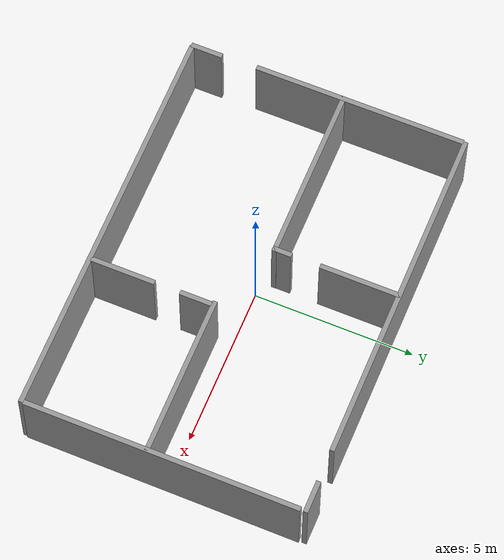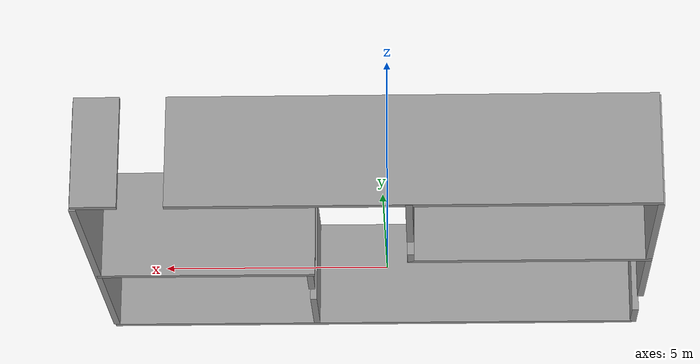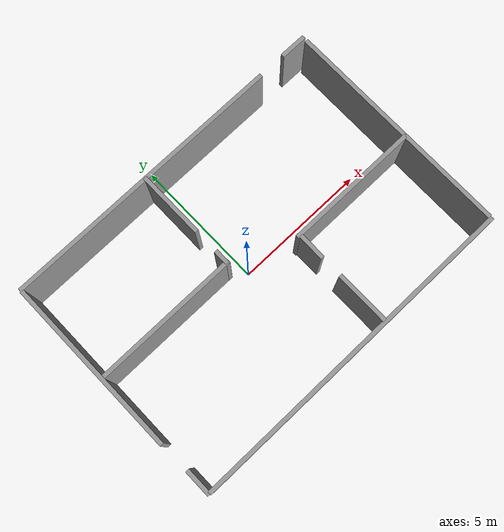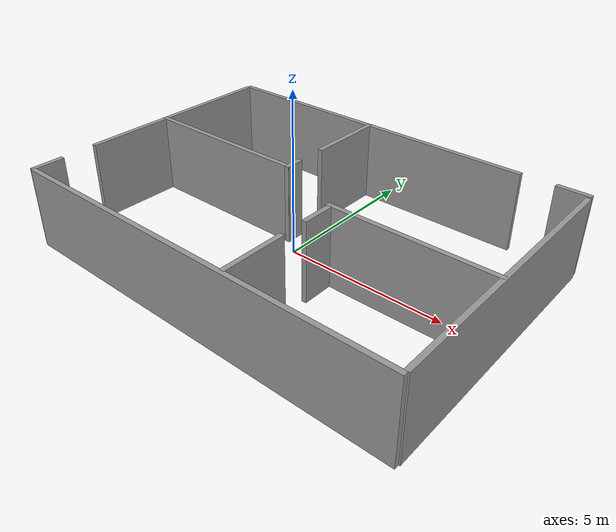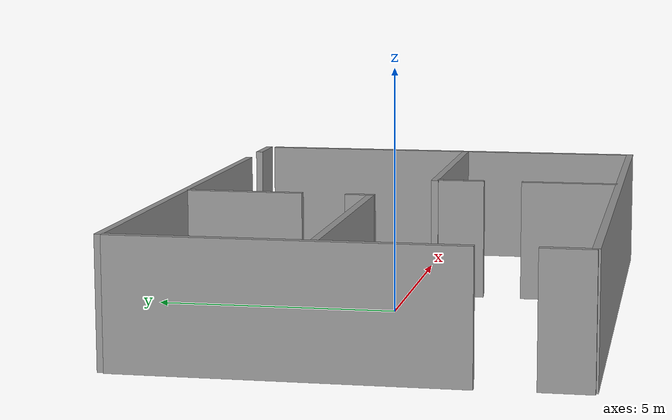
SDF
<?xml version='1.0'?>
<sdf version='1.6'>
  <model name='hw1'>
    <pose frame=''>0.376981 -0.092996 0 0 -0 0</pose>
    <link name='Wall_10'>
      <collision name='Wall_10_Collision'>
        <geometry>
          <box>
            <size>1 0.15 2.5</size>
          </box>
        </geometry>
        <pose frame=''>0 0 1.25 0 -0 0</pose>
      </collision>
      <visual name='Wall_10_Visual'>
        <pose frame=''>0 0 1.25 0 -0 0</pose>
        <geometry>
          <box>
            <size>1 0.15 2.5</size>
          </box>
        </geometry>
        <material>
          <script>
            <uri>file://media/materials/scripts/gazebo.material</uri>
            <name>Gazebo/Grey</name>
          </script>
          <ambient>1 1 1 1</ambient>
        </material>
        <meta>
          <layer>0</layer>
        </meta>
      </visual>
      <pose frame=''>5.80062 4.35984 0 0 -0 3.14159</pose>
    </link>
    <link name='Wall_12'>
      <collision name='Wall_12_Collision'>
        <geometry>
          <box>
            <size>10.6 0.15 2.5</size>
          </box>
        </geometry>
        <pose frame=''>0 0 1.25 0 -0 0</pose>
      </collision>
      <visual name='Wall_12_Visual'>
        <pose frame=''>0 0 1.25 0 -0 0</pose>
        <geometry>
          <box>
            <size>10.6 0.15 2.5</size>
          </box>
        </geometry>
        <material>
          <script>
            <uri>file://media/materials/scripts/gazebo.material</uri>
            <name>Gazebo/Grey</name>
          </script>
          <ambient>1 1 1 1</ambient>
        </material>
        <meta>
          <layer>0</layer>
        </meta>
      </visual>
      <pose frame=''>-0.997757 4.35501 0 0 -0 0</pose>
    </link>
    <link name='Wall_14'>
      <collision name='Wall_14_Collision'>
        <geometry>
          <box>
            <size>6.6 0.15 2.5</size>
          </box>
        </geometry>
        <pose frame=''>0 0 1.25 0 -0 0</pose>
      </collision>
      <visual name='Wall_14_Visual'>
        <pose frame=''>0 0 1.25 0 -0 0</pose>
        <geometry>
          <box>
            <size>6.6 0.15 2.5</size>
          </box>
        </geometry>
        <material>
          <script>
            <uri>file://media/materials/scripts/gazebo.material</uri>
            <name>Gazebo/Grey</name>
          </script>
          <ambient>1 1 1 1</ambient>
        </material>
        <meta>
          <layer>0</layer>
        </meta>
      </visual>
      <pose frame=''>-6.2654 0.998055 0 0 0 -1.5708</pose>
    </link>
    <link name='Wall_16'>
      <collision name='Wall_16_Collision'>
        <geometry>
          <box>
            <size>5.5 0.15 2.5</size>
          </box>
        </geometry>
        <pose frame=''>0 0 1.25 0 -0 0</pose>
      </collision>
      <visual name='Wall_16_Visual'>
        <pose frame=''>0 0 1.25 0 -0 0</pose>
        <geometry>
          <box>
            <size>5.5 0.15 2.5</size>
          </box>
        </geometry>
        <material>
          <script>
            <uri>file://media/materials/scripts/gazebo.material</uri>
            <name>Gazebo/Grey</name>
          </script>
          <ambient>1 1 1 1</ambient>
        </material>
        <meta>
          <layer>0</layer>
        </meta>
      </visual>
      <pose frame=''>-3.58379 0.483785 0 0 -0 0</pose>
    </link>
    <link name='Wall_18'>
      <collision name='Wall_18_Collision'>
        <geometry>
          <box>
            <size>2.5 0.15 2.5</size>
          </box>
        </geometry>
        <pose frame=''>0 0 1.25 0 -0 0</pose>
      </collision>
      <visual name='Wall_18_Visual'>
        <pose frame=''>0 0 1.25 0 -0 0</pose>
        <geometry>
          <box>
            <size>2.5 0.15 2.5</size>
          </box>
        </geometry>
        <material>
          <script>
            <uri>file://media/materials/scripts/gazebo.material</uri>
            <name>Gazebo/Grey</name>
          </script>
          <ambient>1 1 1 1</ambient>
        </material>
        <meta>
          <layer>0</layer>
        </meta>
      </visual>
      <pose frame=''>-0.915694 3.14276 0 0 0 -1.5708</pose>
    </link>
    <link name='Wall_20'>
      <collision name='Wall_20_Collision'>
        <geometry>
          <box>
            <size>0.6 0.15 2.5</size>
          </box>
        </geometry>
        <pose frame=''>0 0 1.25 0 -0 0</pose>
      </collision>
      <visual name='Wall_20_Visual'>
        <pose frame=''>0 0 1.25 0 -0 0</pose>
        <geometry>
          <box>
            <size>0.6 0.15 2.5</size>
          </box>
        </geometry>
        <material>
          <script>
            <uri>file://media/materials/scripts/gazebo.material</uri>
            <name>Gazebo/Grey</name>
          </script>
          <ambient>1 1 1 1</ambient>
        </material>
        <meta>
          <layer>0</layer>
        </meta>
      </visual>
      <pose frame=''>-0.915694 0.707441 0 0 0 -1.5708</pose>
    </link>
    <link name='Wall_22'>
      <collision name='Wall_22_Collision'>
        <geometry>
          <box>
            <size>2 0.15 2.5</size>
          </box>
        </geometry>
        <pose frame=''>0 0 1.25 0 -0 0</pose>
      </collision>
      <visual name='Wall_22_Visual'>
        <pose frame=''>0 0 1.25 0 -0 0</pose>
        <geometry>
          <box>
            <size>2 0.15 2.5</size>
          </box>
        </geometry>
        <material>
          <script>
            <uri>file://media/materials/scripts/gazebo.material</uri>
            <name>Gazebo/Grey</name>
          </script>
          <ambient>1 1 1 1</ambient>
        </material>
        <meta>
          <layer>0</layer>
        </meta>
      </visual>
      <pose frame=''>1.40916 -3.3167 0 0 0 -1.5708</pose>
    </link>
    <link name='Wall_24'>
      <collision name='Wall_24_Collision'>
        <geometry>
          <box>
            <size>1 0.15 2.5</size>
          </box>
        </geometry>
        <pose frame=''>0 0 1.25 0 -0 0</pose>
      </collision>
      <visual name='Wall_24_Visual'>
        <pose frame=''>0 0 1.25 0 -0 0</pose>
        <geometry>
          <box>
            <size>1 0.15 2.5</size>
          </box>
        </geometry>
        <material>
          <script>
            <uri>file://media/materials/scripts/gazebo.material</uri>
            <name>Gazebo/Grey</name>
          </script>
          <ambient>1 1 1 1</ambient>
        </material>
        <meta>
          <layer>0</layer>
        </meta>
      </visual>
      <pose frame=''>1.40916 -1.02207 0 0 0 -1.5708</pose>
    </link>
    <link name='Wall_26'>
      <collision name='Wall_26_Collision'>
        <geometry>
          <box>
            <size>5 0.15 2.5</size>
          </box>
        </geometry>
        <pose frame=''>0 0 1.25 0 -0 0</pose>
      </collision>
      <visual name='Wall_26_Visual'>
        <pose frame=''>0 0 1.25 0 -0 0</pose>
        <geometry>
          <box>
            <size>5 0.15 2.5</size>
          </box>
        </geometry>
        <material>
          <script>
            <uri>file://media/materials/scripts/gazebo.material</uri>
            <name>Gazebo/Grey</name>
          </script>
          <ambient>1 1 1 1</ambient>
        </material>
        <meta>
          <layer>0</layer>
        </meta>
      </visual>
      <pose frame=''>3.79338 -0.474709 0 0 -0 0</pose>
    </link>
    <link name='Wall_4'>
      <collision name='Wall_4_Collision'>
        <geometry>
          <box>
            <size>8.5 0.15 2.5</size>
          </box>
        </geometry>
        <pose frame=''>0 0 1.25 0 -0 0</pose>
      </collision>
      <visual name='Wall_4_Visual'>
        <pose frame=''>0 0 1.25 0 -0 0</pose>
        <geometry>
          <box>
            <size>8.5 0.15 2.5</size>
          </box>
        </geometry>
        <material>
          <script>
            <uri>file://media/materials/scripts/gazebo.material</uri>
            <name>Gazebo/Grey</name>
          </script>
          <ambient>1 1 1 1</ambient>
        </material>
        <meta>
          <layer>0</layer>
        </meta>
      </visual>
      <pose frame=''>6.2654 -0.044264 0 0 0 -1.5708</pose>
    </link>
    <link name='Wall_6'>
      <collision name='Wall_6_Collision'>
        <geometry>
          <box>
            <size>12.5 0.15 2.5</size>
          </box>
        </geometry>
        <pose frame=''>0 0 1.25 0 -0 0</pose>
      </collision>
      <visual name='Wall_6_Visual'>
        <pose frame=''>0 0 1.25 0 -0 0</pose>
        <geometry>
          <box>
            <size>12.5 0.15 2.5</size>
          </box>
        </geometry>
        <material>
          <script>
            <uri>file://media/materials/scripts/gazebo.material</uri>
            <name>Gazebo/Grey</name>
          </script>
          <ambient>1 1 1 1</ambient>
        </material>
        <meta>
          <layer>0</layer>
        </meta>
      </visual>
      <pose frame=''>0.050617 -4.35984 0 0 -0 3.14159</pose>
    </link>
    <link name='Wall_8'>
      <collision name='Wall_8_Collision'>
        <geometry>
          <box>
            <size>1 0.15 2.5</size>
          </box>
        </geometry>
        <pose frame=''>0 0 1.25 0 -0 0</pose>
      </collision>
      <visual name='Wall_8_Visual'>
        <pose frame=''>0 0 1.25 0 -0 0</pose>
        <geometry>
          <box>
            <size>1 0.15 2.5</size>
          </box>
        </geometry>
        <material>
          <script>
            <uri>file://media/materials/scripts/gazebo.material</uri>
            <name>Gazebo/Grey</name>
          </script>
          <ambient>1 1 1 1</ambient>
        </material>
        <meta>
          <layer>0</layer>
        </meta>
      </visual>
      <pose frame=''>-6.22528 -3.89428 0 0 -0 1.5708</pose>
    </link>
    <static>1</static>
  </model>
</sdf>
